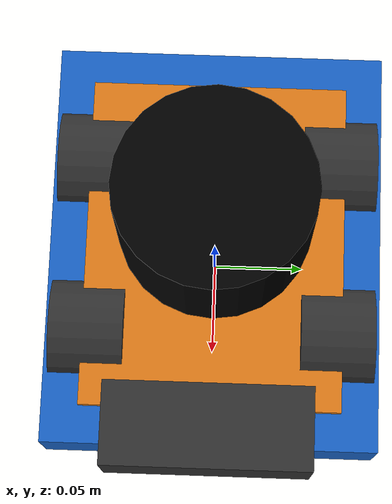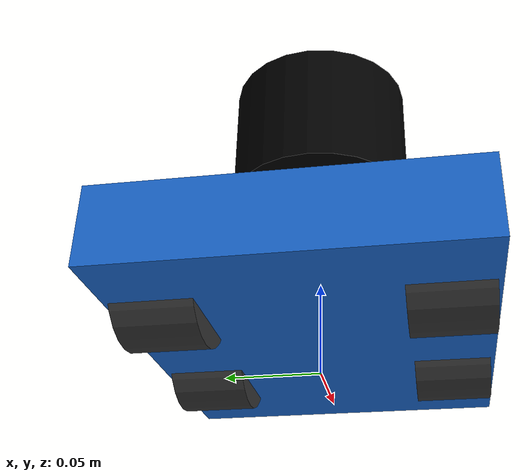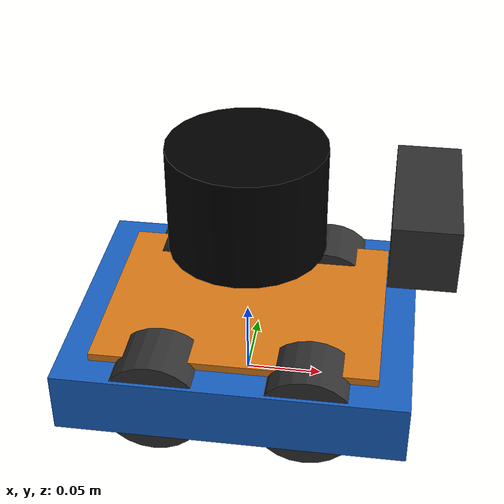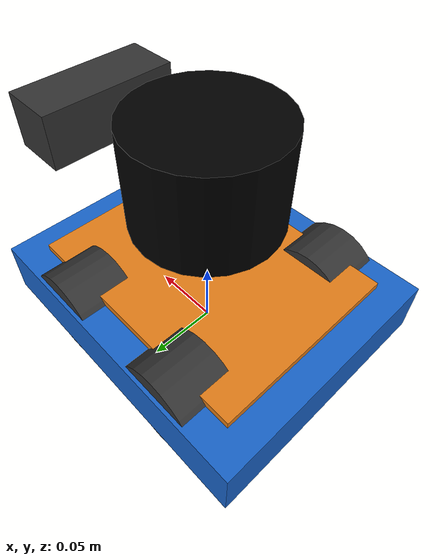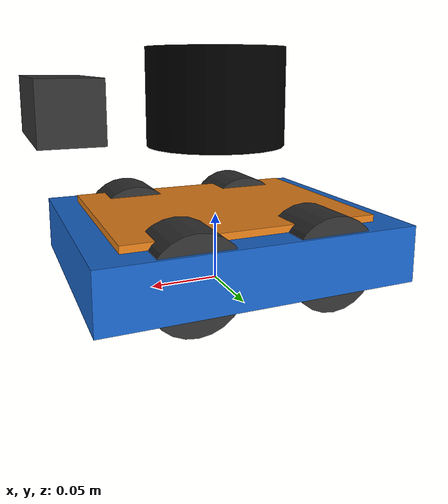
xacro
<?xml version="1.0"?>
<robot name="mecanum_amr" xmlns:xacro="http://www.ros.org/wiki/xacro">

  <!-- ==================== Properties ==================== -->
  <!-- Clean-room model from the same-hardware profile; verify acrylic dimensions. -->
  <xacro:property name="base_width"  value="0.18"/>
  <xacro:property name="base_length" value="0.22"/>
  <xacro:property name="base_height" value="0.04"/>
  <xacro:property name="base_mass"   value="3.0"/>

  <!-- Teacher materials specify 65 mm wheels; loaded rolling radius needs calibration. -->
  <xacro:property name="wheel_radius" value="0.0325"/>
  <xacro:property name="wheel_width"  value="0.04"/>
  <xacro:property name="wheel_mass"   value="0.15"/>

  <xacro:property name="wheel_x_offset" value="0.0475"/>
  <xacro:property name="wheel_y_offset" value="0.0675"/>
  <xacro:property name="wheel_z_offset" value="0.0"/>
  <xacro:property name="lidar_z_offset" value="0.105"/>

  <!-- ==================== Macros ==================== -->
  <xacro:macro name="box_inertia" params="m w h d">
    <inertial>
      <mass value="${m}"/>
      <inertia ixx="${m*(h*h+d*d)/12}" ixy="0" ixz="0"
               iyy="${m*(w*w+d*d)/12}" iyz="0"
               izz="${m*(w*w+h*h)/12}"/>
    </inertial>
  </xacro:macro>

  <xacro:macro name="cylinder_inertia" params="m r h">
    <inertial>
      <mass value="${m}"/>
      <inertia ixx="${m*(3*r*r+h*h)/12}" ixy="0" ixz="0"
               iyy="${m*(3*r*r+h*h)/12}" iyz="0"
               izz="${m*r*r/2}"/>
    </inertial>
  </xacro:macro>

  <xacro:macro name="mecanum_wheel" params="name x y z roll">
    <link name="${name}_link">
      <visual>
        <geometry>
          <cylinder radius="${wheel_radius}" length="${wheel_width}"/>
        </geometry>
        <material name="dark_gray">
          <color rgba="0.2 0.2 0.2 1.0"/>
        </material>
      </visual>
      <collision>
        <geometry>
          <cylinder radius="${wheel_radius}" length="${wheel_width}"/>
        </geometry>
      </collision>
      <xacro:cylinder_inertia m="${wheel_mass}" r="${wheel_radius}" h="${wheel_width}"/>
    </link>

    <joint name="${name}_joint" type="continuous">
      <parent link="base_link"/>
      <child  link="${name}_link"/>
      <origin xyz="${x} ${y} ${z}" rpy="${roll} 0 0"/>
      <axis xyz="0 0 1"/>
      <dynamics damping="0.1" friction="0.1"/>
    </joint>
  </xacro:macro>

  <!-- ==================== Base Link ==================== -->
  <link name="base_footprint"/>

  <joint name="base_footprint_joint" type="fixed">
    <parent link="base_footprint"/>
    <child  link="base_link"/>
    <origin xyz="0 0 ${wheel_radius - wheel_z_offset}" rpy="0 0 0"/>
  </joint>

  <link name="base_link">
    <visual>
      <geometry>
        <box size="${base_length} ${base_width} ${base_height}"/>
      </geometry>
      <material name="blue">
        <color rgba="0.1 0.4 0.8 1.0"/>
      </material>
    </visual>
    <collision>
      <geometry>
        <box size="${base_length} ${base_width} ${base_height}"/>
      </geometry>
    </collision>
    <xacro:box_inertia m="${base_mass}" w="${base_width}" h="${base_height}" d="${base_length}"/>
  </link>

  <!-- ==================== Wheels ==================== -->
  <xacro:mecanum_wheel name="front_left_wheel"  x=" ${wheel_x_offset}" y=" ${wheel_y_offset}" z="${wheel_z_offset}" roll="${pi/2}"/>
  <xacro:mecanum_wheel name="front_right_wheel" x=" ${wheel_x_offset}" y="-${wheel_y_offset}" z="${wheel_z_offset}" roll="${pi/2}"/>
  <xacro:mecanum_wheel name="rear_left_wheel"   x="-${wheel_x_offset}" y=" ${wheel_y_offset}" z="${wheel_z_offset}" roll="${pi/2}"/>
  <xacro:mecanum_wheel name="rear_right_wheel"  x="-${wheel_x_offset}" y="-${wheel_y_offset}" z="${wheel_z_offset}" roll="${pi/2}"/>

  <!-- ==================== LiDAR ==================== -->
  <link name="lidar_link">
    <visual>
      <geometry>
        <cylinder radius="0.05" length="0.07"/>
      </geometry>
      <material name="black">
        <color rgba="0.0 0.0 0.0 1.0"/>
      </material>
    </visual>
    <collision>
      <geometry>
        <cylinder radius="0.05" length="0.07"/>
      </geometry>
    </collision>
    <xacro:cylinder_inertia m="0.5" r="0.05" h="0.07"/>
  </link>

  <joint name="lidar_joint" type="fixed">
    <parent link="base_link"/>
    <child  link="lidar_link"/>
    <origin xyz="0 0 ${lidar_z_offset}" rpy="0 0 0"/>
  </joint>

  <!-- LiDAR Gazebo plugin -->
  <gazebo reference="lidar_link">
    <sensor name="lidar" type="ray">
      <always_on>true</always_on>
      <visualize>true</visualize>
      <update_rate>10</update_rate>
      <ray>
        <scan>
          <horizontal>
            <samples>360</samples>
            <resolution>1.0</resolution>
            <min_angle>-3.14159</min_angle>
            <max_angle>3.14159</max_angle>
          </horizontal>
        </scan>
        <range>
          <min>0.12</min>
          <max>20.0</max>
          <resolution>0.015</resolution>
        </range>
      </ray>
      <plugin name="scan" filename="libgazebo_ros_ray_sensor.so">
        <ros>
          <namespace>/</namespace>
          <remapping>~/out:=scan</remapping>
        </ros>
        <output_type>sensor_msgs/LaserScan</output_type>
        <frame_name>lidar_link</frame_name>
      </plugin>
    </sensor>
  </gazebo>

  <!-- ==================== Camera (QR scanning) ==================== -->
  <link name="camera_link">
    <visual>
      <geometry>
        <box size="0.04 0.10 0.04"/>
      </geometry>
      <material name="dark_gray">
        <color rgba="0.2 0.2 0.2 1.0"/>
      </material>
    </visual>
    <collision>
      <geometry>
        <box size="0.04 0.10 0.04"/>
      </geometry>
    </collision>
    <xacro:box_inertia m="0.1" w="0.10" h="0.04" d="0.04"/>
  </link>

  <joint name="camera_joint" type="fixed">
    <parent link="base_link"/>
    <child  link="camera_link"/>
    <origin xyz="0.11 0 0.10" rpy="0 0 0"/>
  </joint>

  <link name="camera_optical_link"/>
  <joint name="camera_optical_joint" type="fixed">
    <parent link="camera_link"/>
    <child  link="camera_optical_link"/>
    <origin xyz="0 0 0" rpy="-${pi/2} 0 -${pi/2}"/>
  </joint>

  <gazebo reference="camera_link">
    <sensor name="camera" type="camera">
      <always_on>true</always_on>
      <visualize>true</visualize>
      <update_rate>30</update_rate>
      <camera>
        <horizontal_fov>1.3962634</horizontal_fov>
        <image>
          <width>640</width>
          <height>480</height>
          <format>R8G8B8</format>
        </image>
        <clip>
          <near>0.02</near>
          <far>300</far>
        </clip>
      </camera>
      <plugin name="camera_controller" filename="libgazebo_ros_camera.so">
        <frame_name>camera_optical_link</frame_name>
      </plugin>
    </sensor>
  </gazebo>

  <!-- ==================== Lift Mechanism ==================== -->
  <link name="lift_platform_link">
    <visual>
      <geometry>
        <box size="0.18 0.14 0.01"/>
      </geometry>
      <material name="orange">
        <color rgba="0.9 0.5 0.1 1.0"/>
      </material>
    </visual>
    <collision>
      <geometry>
        <box size="0.18 0.14 0.01"/>
      </geometry>
    </collision>
    <xacro:box_inertia m="0.25" w="0.18" h="0.01" d="0.22"/>
  </link>

  <joint name="lift_joint" type="prismatic">
    <parent link="base_link"/>
    <child  link="lift_platform_link"/>
    <origin xyz="0 0 ${base_height/2}" rpy="0 0 0"/>
    <axis xyz="0 0 1"/>
    <limit lower="0.0" upper="0.08" effort="50" velocity="0.05"/>
    <dynamics damping="10.0" friction="5.0"/>
  </joint>

  <!-- ==================== Gazebo Base Settings ==================== -->
  <gazebo reference="base_link">
    <material>Gazebo/Blue</material>
    <mu1>0.8</mu1>
    <mu2>0.8</mu2>
  </gazebo>

  <!-- Planar simulation plugin; this is kinematic and not a roller-contact model. -->
  <gazebo>
    <plugin name="mecanum_drive_controller" filename="libgazebo_ros_planar_move.so">
      <ros>
        <remapping>cmd_vel:=cmd_vel</remapping>
      </ros>
      <update_rate>100</update_rate>
      <publish_rate>10</publish_rate>
      <publish_odom>true</publish_odom>
      <publish_odom_tf>true</publish_odom_tf>
      <odometry_frame>odom</odometry_frame>
      <robot_base_frame>base_footprint</robot_base_frame>
    </plugin>
  </gazebo>

</robot>
